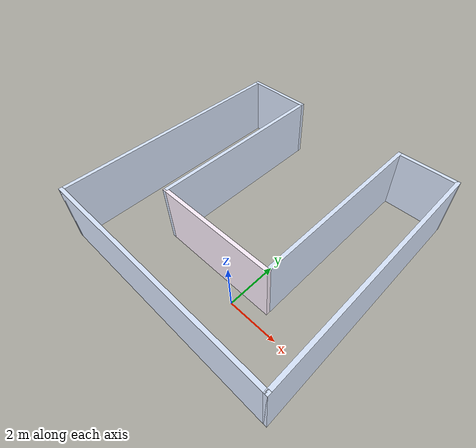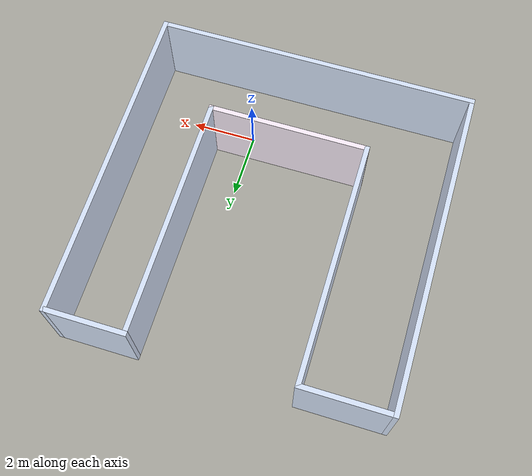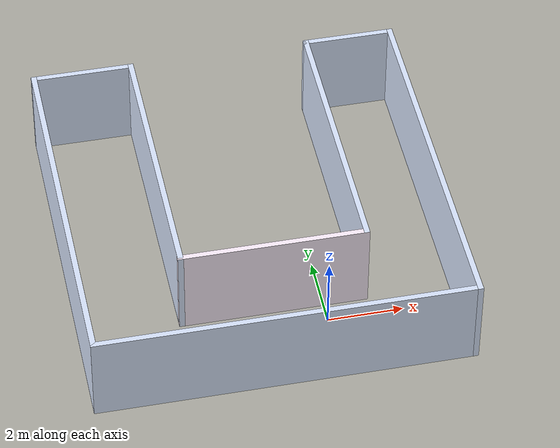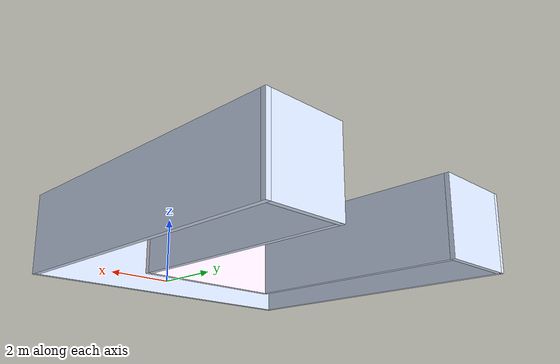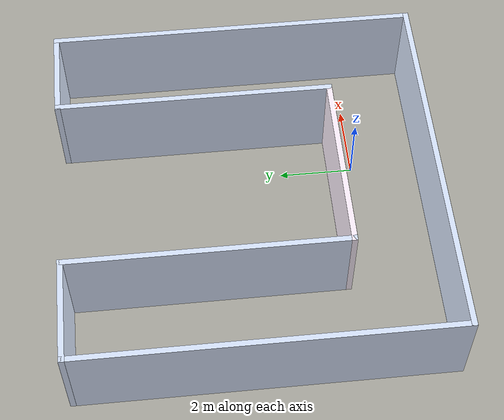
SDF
<?xml version='1.0'?>
<sdf version='1.6'>
  <model name='MyWorld'>
    <pose frame=''>-1.47735 3.02167 0 0 -0 0</pose>
    <link name='Wall_11'>
      <collision name='Wall_11_Collision'>
        <geometry>
          <box>
            <size>10 0.15 2.5</size>
          </box>
        </geometry>
        <pose frame=''>0 0 1.25 0 -0 0</pose>
      </collision>
      <visual name='Wall_11_Visual'>
        <pose frame=''>0 0 1.25 0 -0 0</pose>
        <geometry>
          <box>
            <size>10 0.15 2.5</size>
          </box>
        </geometry>
        <material>
          <script>
            <uri>file://media/materials/scripts/gazebo.material</uri>
            <name>Gazebo/Grey</name>
          </script>
          <ambient>0.858824 0.909804 1 1</ambient>
        </material>
        <meta>
          <layer>0</layer>
        </meta>
      </visual>
      <pose frame=''>-4.925 0 0 0 0 -1.5708</pose>
    </link>
    <link name='Wall_12'>
      <collision name='Wall_12_Collision'>
        <geometry>
          <box>
            <size>10 0.15 2.5</size>
          </box>
        </geometry>
        <pose frame=''>0 0 1.25 0 -0 0</pose>
      </collision>
      <visual name='Wall_12_Visual'>
        <pose frame=''>0 0 1.25 0 -0 0</pose>
        <geometry>
          <box>
            <size>10 0.15 2.5</size>
          </box>
        </geometry>
        <material>
          <script>
            <uri>file://media/materials/scripts/gazebo.material</uri>
            <name>Gazebo/Grey</name>
          </script>
          <ambient>0.858824 0.909804 1 1</ambient>
        </material>
        <meta>
          <layer>0</layer>
        </meta>
      </visual>
      <pose frame=''>0 -4.925 0 0 -0 0</pose>
    </link>
    <link name='Wall_13'>
      <collision name='Wall_13_Collision'>
        <geometry>
          <box>
            <size>10 0.15 2.5</size>
          </box>
        </geometry>
        <pose frame=''>0 0 1.25 0 -0 0</pose>
      </collision>
      <visual name='Wall_13_Visual'>
        <pose frame=''>0 0 1.25 0 -0 0</pose>
        <geometry>
          <box>
            <size>10 0.15 2.5</size>
          </box>
        </geometry>
        <material>
          <script>
            <uri>file://media/materials/scripts/gazebo.material</uri>
            <name>Gazebo/Grey</name>
          </script>
          <ambient>0.858824 0.909804 1 1</ambient>
        </material>
        <meta>
          <layer>0</layer>
        </meta>
      </visual>
      <pose frame=''>4.925 0 0 0 -0 1.5708</pose>
    </link>
    <link name='Wall_14'>
      <collision name='Wall_14_Collision'>
        <geometry>
          <box>
            <size>2.5 0.15 2.5</size>
          </box>
        </geometry>
        <pose frame=''>0 0 1.25 0 -0 0</pose>
      </collision>
      <visual name='Wall_14_Visual'>
        <pose frame=''>0 0 1.25 0 -0 0</pose>
        <geometry>
          <box>
            <size>2.5 0.15 2.5</size>
          </box>
        </geometry>
        <material>
          <script>
            <uri>file://media/materials/scripts/gazebo.material</uri>
            <name>Gazebo/Grey</name>
          </script>
          <ambient>0.858824 0.909804 1 1</ambient>
        </material>
        <meta>
          <layer>0</layer>
        </meta>
      </visual>
      <pose frame=''>3.75 4.925 0 0 -0 3.14159</pose>
    </link>
    <link name='Wall_15'>
      <collision name='Wall_15_Collision'>
        <geometry>
          <box>
            <size>7.5 0.15 2.5</size>
          </box>
        </geometry>
        <pose frame=''>0 0 1.25 0 -0 0</pose>
      </collision>
      <visual name='Wall_15_Visual'>
        <pose frame=''>0 0 1.25 0 -0 0</pose>
        <geometry>
          <box>
            <size>7.5 0.15 2.5</size>
          </box>
        </geometry>
        <material>
          <script>
            <uri>file://media/materials/scripts/gazebo.material</uri>
            <name>Gazebo/Grey</name>
          </script>
          <ambient>0.858824 0.909804 1 1</ambient>
        </material>
        <meta>
          <layer>0</layer>
        </meta>
      </visual>
      <pose frame=''>2.575 1.25 0 0 0 -1.5708</pose>
    </link>
    <link name='Wall_16'>
      <collision name='Wall_16_Collision'>
        <geometry>
          <box>
            <size>5 0.15 2.5</size>
          </box>
        </geometry>
        <pose frame=''>0 0 1.25 0 -0 0</pose>
      </collision>
      <visual name='Wall_16_Visual'>
        <pose frame=''>0 0 1.25 0 -0 0</pose>
        <geometry>
          <box>
            <size>5 0.15 2.5</size>
          </box>
        </geometry>
        <material>
          <script>
            <uri>file://media/materials/scripts/gazebo.material</uri>
            <name>Gazebo/Grey</name>
          </script>
          <ambient>1 0.94902 1 1</ambient>
        </material>
        <meta>
          <layer>0</layer>
        </meta>
      </visual>
      <pose frame=''>0.15 -2.425 0 0 -0 3.14159</pose>
    </link>
    <link name='Wall_17'>
      <collision name='Wall_17_Collision'>
        <geometry>
          <box>
            <size>7.5 0.15 2.5</size>
          </box>
        </geometry>
        <pose frame=''>0 0 1.25 0 -0 0</pose>
      </collision>
      <visual name='Wall_17_Visual'>
        <pose frame=''>0 0 1.25 0 -0 0</pose>
        <geometry>
          <box>
            <size>7.5 0.15 2.5</size>
          </box>
        </geometry>
        <material>
          <script>
            <uri>file://media/materials/scripts/gazebo.material</uri>
            <name>Gazebo/Grey</name>
          </script>
          <ambient>0.858824 0.909804 1 1</ambient>
        </material>
        <meta>
          <layer>0</layer>
        </meta>
      </visual>
      <pose frame=''>-2.275 1.25 0 0 -0 1.5708</pose>
    </link>
    <link name='Wall_18'>
      <collision name='Wall_18_Collision'>
        <geometry>
          <box>
            <size>2.8 0.15 2.5</size>
          </box>
        </geometry>
        <pose frame=''>0 0 1.25 0 -0 0</pose>
      </collision>
      <visual name='Wall_18_Visual'>
        <pose frame=''>0 0 1.25 0 -0 0</pose>
        <geometry>
          <box>
            <size>2.8 0.15 2.5</size>
          </box>
        </geometry>
        <material>
          <script>
            <uri>file://media/materials/scripts/gazebo.material</uri>
            <name>Gazebo/Grey</name>
          </script>
          <ambient>0.858824 0.909804 1 1</ambient>
        </material>
        <meta>
          <layer>0</layer>
        </meta>
      </visual>
      <pose frame=''>-3.6 4.925 0 0 0 -3.14159</pose>
    </link>
    <static>1</static>
  </model>
</sdf>
